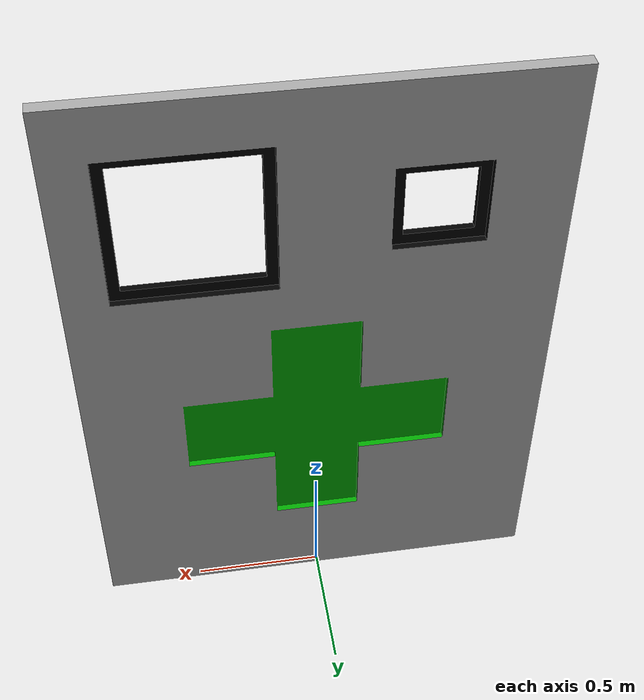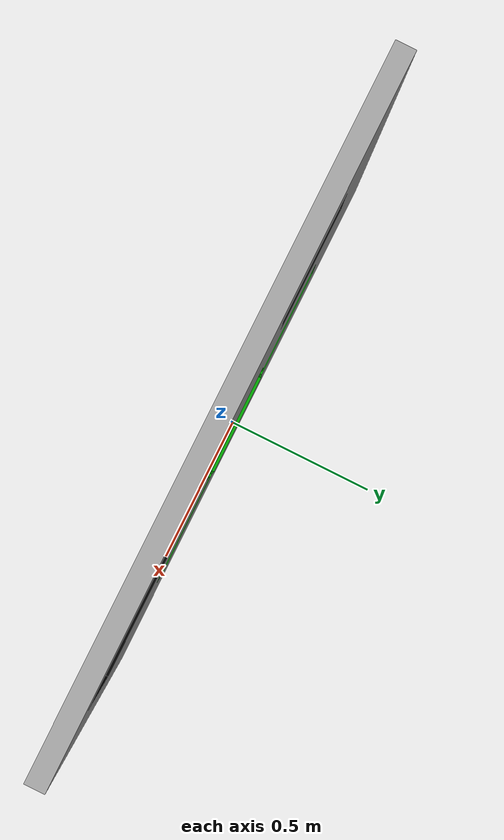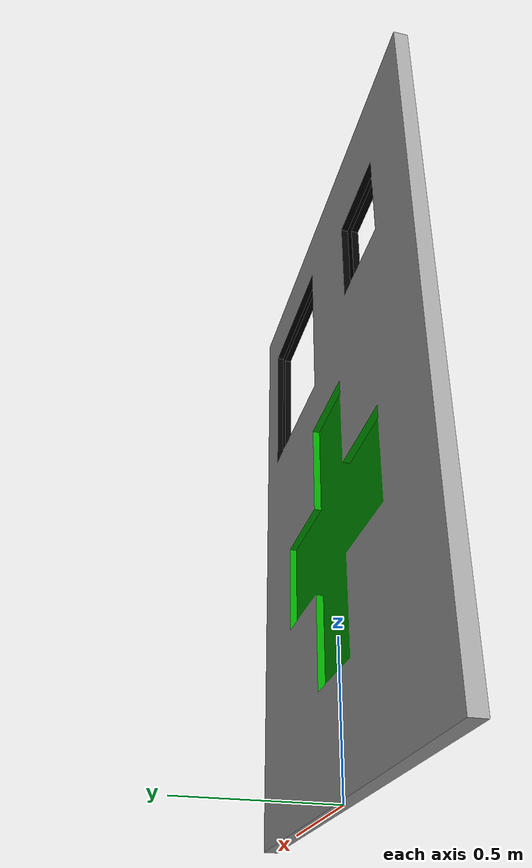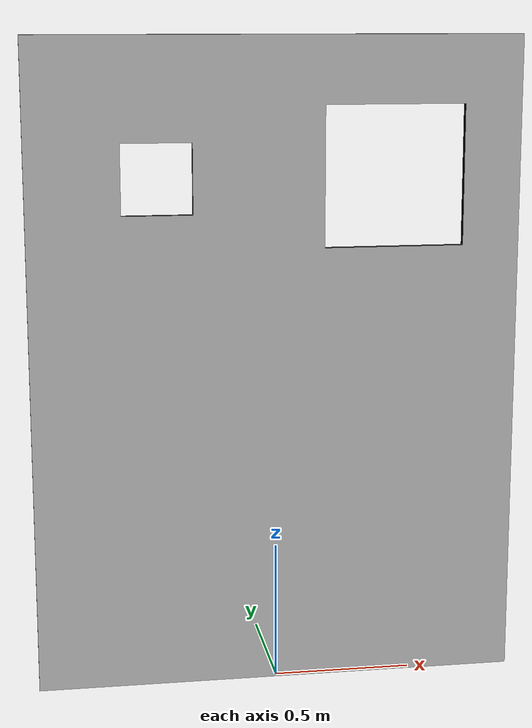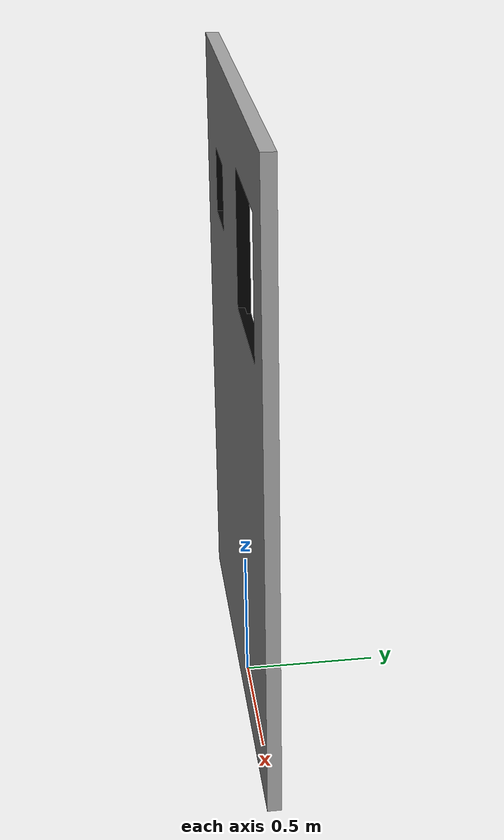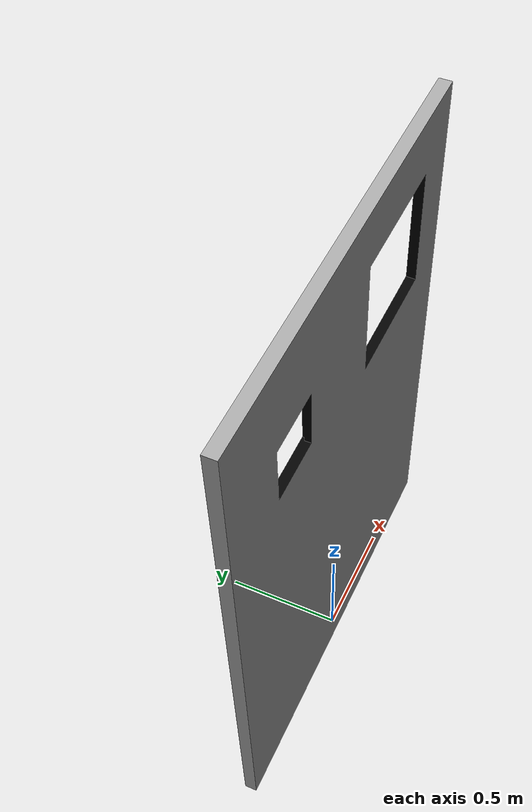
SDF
<?xml version="1.0"?>
<sdf version="1.5">
  <model name="green_cruciform">
    <static>true</static>
    <pose>0 0 0 0 0 0</pose>
    <link name="base_link">
      <visual name="visual">
        <geometry>
           <mesh>
            <uri>file://detect_and_deliver/green_cruciform.dae</uri>
          </mesh>
        </geometry>
      </visual>
      <collision name="collision">
        <geometry>
           <mesh>
            <uri>file://detect_and_deliver/green_cruciform.dae</uri>
          </mesh>
        </geometry>
      </collision>
    </link>
  </model>
</sdf>
